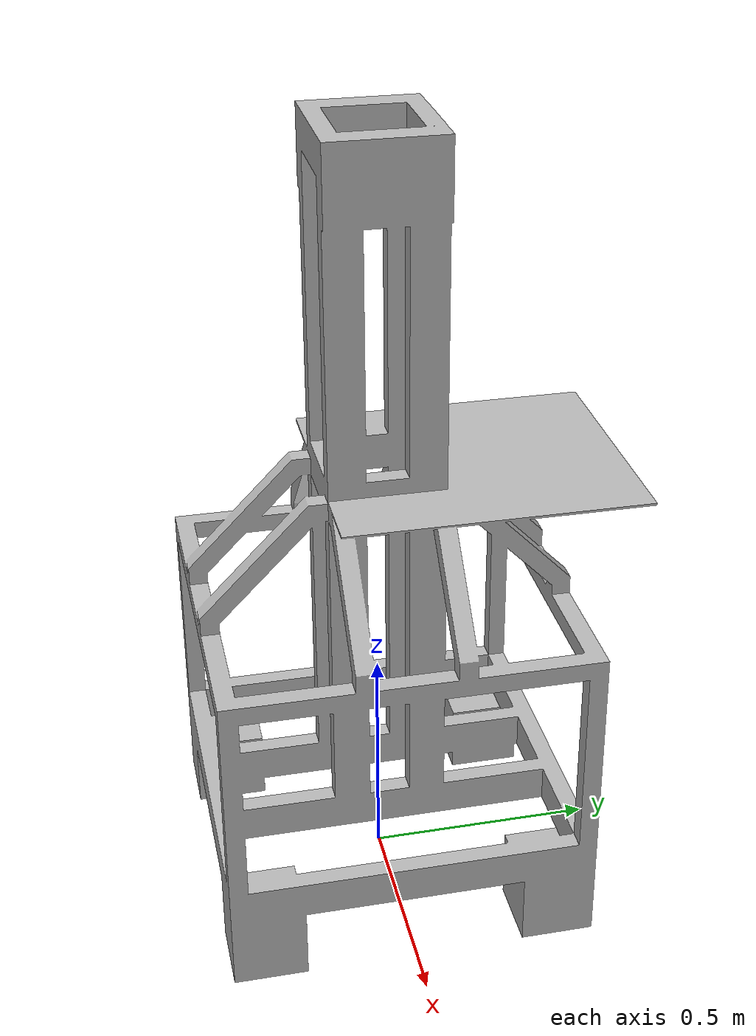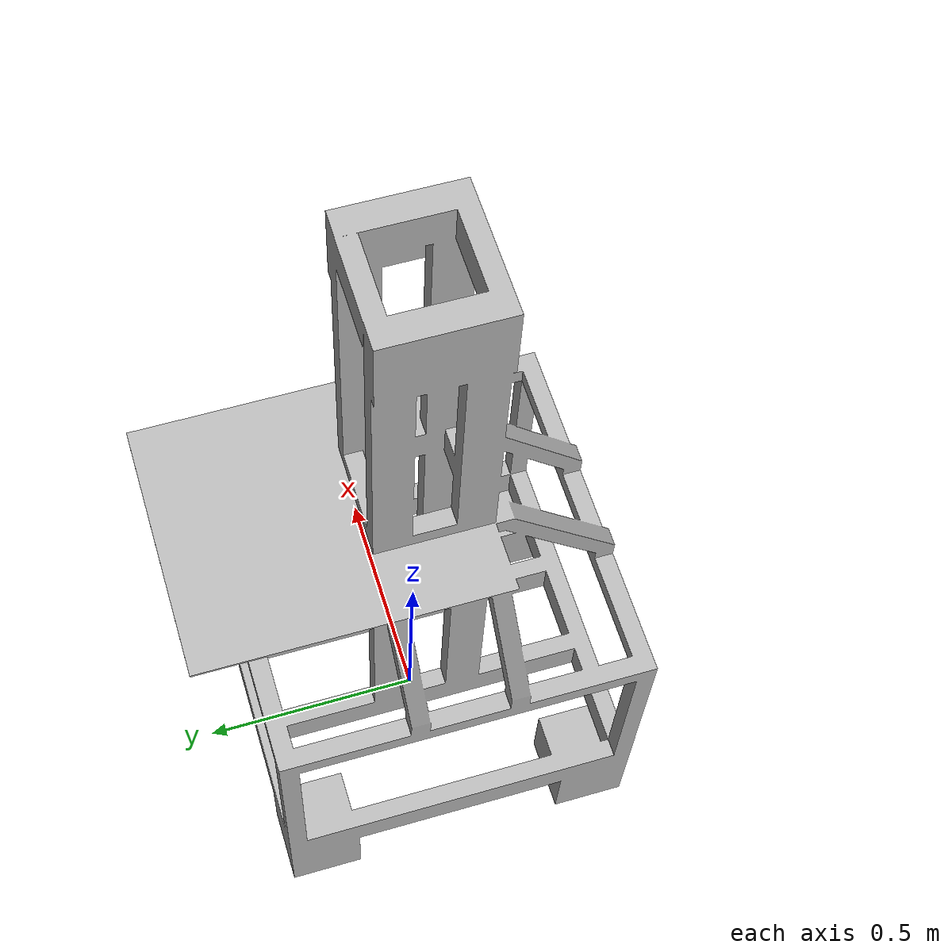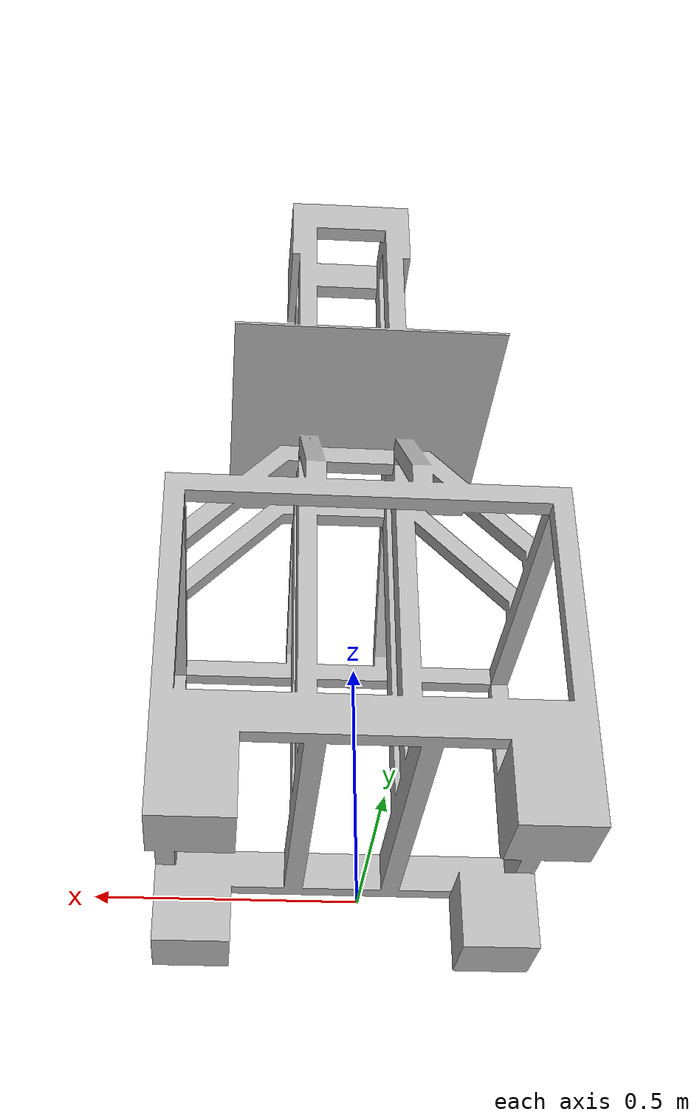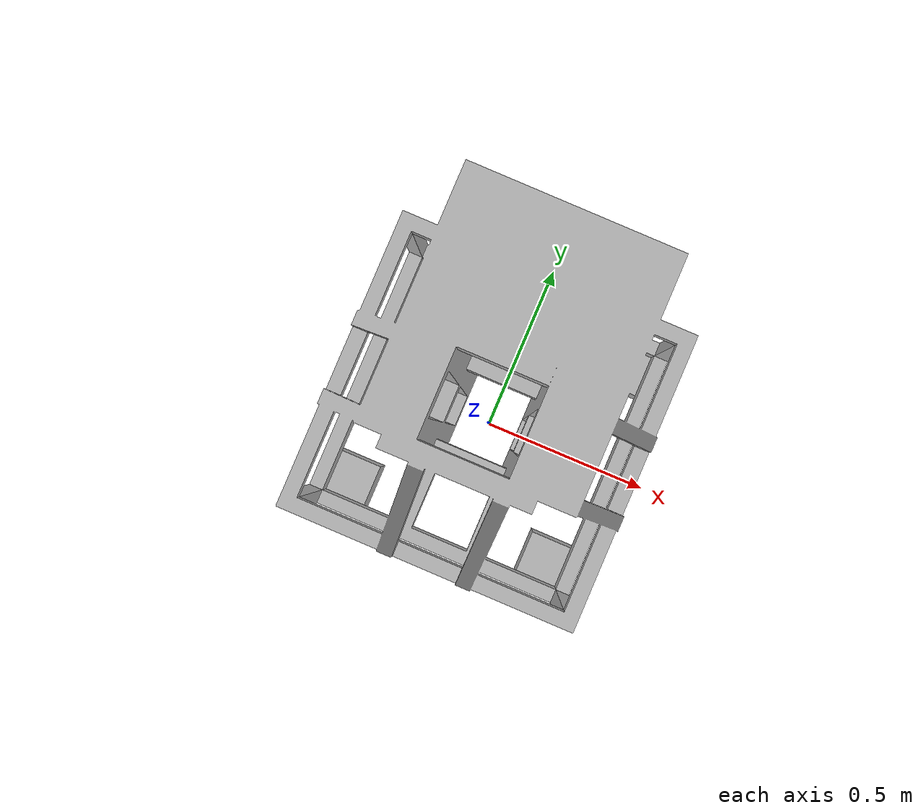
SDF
<?xml version="1.0" ?>
<sdf version="1.4">
  <model name="qmul_metallic_frame">
  <static>true</static>
    <link name="link">
      <inertial>
        <mass>20</mass>
      </inertial>
      <collision name="collision">
        <pose>0.0 0.0 0.0 0 0.0 0.0</pose>
        <geometry>
          <mesh>
            <uri>model://qmul_metallic_frame/meshes/qmul_metallic_frame.stl</uri>
          </mesh>
        </geometry>
        <surface>
          <friction>
            <ode>
              <mu>0.8</mu>
              <mu2>0.8</mu2>
            </ode>
          </friction>
          <contact>
            <ode>
              <kp>1000000.0</kp>
              <kd>1.0</kd>
              <max_vel>0.0000</max_vel>
              <min_depth>0.0000</min_depth>
            </ode>
          </contact>
        </surface>
      </collision>
      <visual name="visual">
        <pose>0.0 0.0 0.0 0 0.0 0.0</pose>
        <geometry>
          <mesh>
            <uri>model://qmul_metallic_frame/meshes/qmul_metallic_frame.stl</uri>
          </mesh>
        </geometry>
      </visual>
    </link>
  </model>
</sdf>
